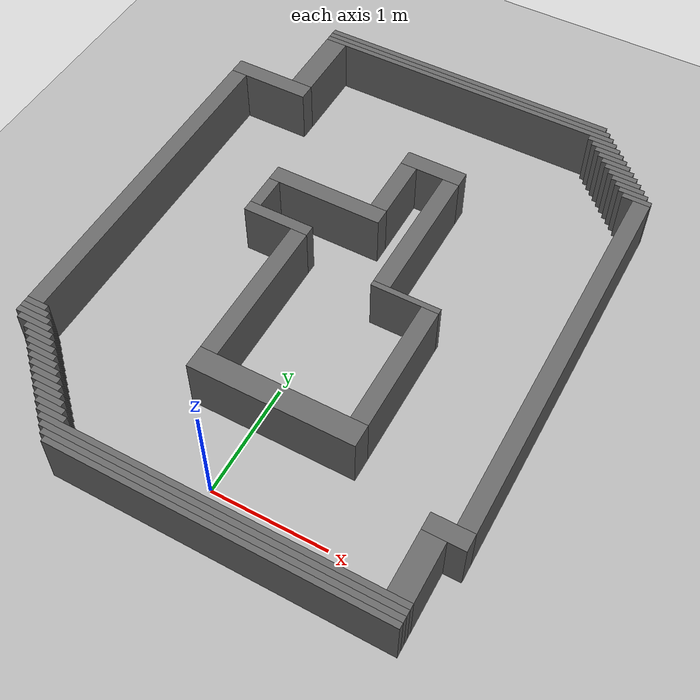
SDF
<?xml version="1.0" ?>
<sdf version="1.6">
  <world name="my_map_world">
    <plugin name="gazebo_ros_state" filename="libgazebo_ros_state.so"/>
    <physics type="ode">
      <real_time_update_rate>1000</real_time_update_rate>
      <max_step_size>0.001</max_step_size>
    </physics>
    <scene>
      <ambient>0.4 0.4 0.4 1</ambient>
      <background>0.7 0.7 0.7 1</background>
      <shadows>true</shadows>
    </scene>
    <light name="sun" type="directional">
      <pose>0 0 10 0 0 0</pose>
      <diffuse>0.8 0.8 0.8 1</diffuse>
      <direction>0.1 0.1 -1</direction>
      <cast_shadows>true</cast_shadows>
    </light>
    <model name="ground_plane">
      <static>true</static>
      <link name="link">
        <collision name="collision">
          <geometry>
            <plane>
              <normal>0 0 1</normal>
              <size>20 20</size>
            </plane>
          </geometry>
          <surface>
            <friction>
              <ode>
                <mu>10.0</mu>
                <mu2>10.0</mu2>
                <fdir1>1 0 0</fdir1>
              </ode>
            </friction>
            <contact>
              <ode>
                <kp>1000000.0</kp>
                <kd>10.0</kd>
                <max_vel>0.1</max_vel>
                <min_depth>0.001</min_depth>
              </ode>
            </contact>
          </surface>
        </collision>
        <visual name="visual">
          <geometry><plane><normal>0 0 1</normal><size>20 20</size></plane></geometry>
          <material><ambient>0.5 0.5 0.5 1</ambient><diffuse>0.7 0.7 0.7 1</diffuse></material>
        </visual>
      </link>
    </model>
    <model name="wall_0">
      <static>true</static>
      <pose>-0.080656 4.467913 0.250000 0 0 0</pose>
      <link name="link">
        <collision name="collision">
          <geometry><box><size>2.750000 0.050000 0.500000</size></box></geometry>
        </collision>
        <visual name="visual">
          <geometry><box><size>2.750000 0.050000 0.500000</size></box></geometry>
          <material><ambient>0.2 0.2 0.2 1</ambient><diffuse>0.4 0.4 0.4 1</diffuse></material>
        </visual>
      </link>
    </model>
    <model name="wall_1">
      <static>true</static>
      <pose>-0.055656 4.417913 0.250000 0 0 0</pose>
      <link name="link">
        <collision name="collision">
          <geometry><box><size>2.800000 0.050000 0.500000</size></box></geometry>
        </collision>
        <visual name="visual">
          <geometry><box><size>2.800000 0.050000 0.500000</size></box></geometry>
          <material><ambient>0.2 0.2 0.2 1</ambient><diffuse>0.4 0.4 0.4 1</diffuse></material>
        </visual>
      </link>
    </model>
    <model name="wall_2">
      <static>true</static>
      <pose>-0.030656 4.367913 0.250000 0 0 0</pose>
      <link name="link">
        <collision name="collision">
          <geometry><box><size>2.850000 0.050000 0.500000</size></box></geometry>
        </collision>
        <visual name="visual">
          <geometry><box><size>2.850000 0.050000 0.500000</size></box></geometry>
          <material><ambient>0.2 0.2 0.2 1</ambient><diffuse>0.4 0.4 0.4 1</diffuse></material>
        </visual>
      </link>
    </model>
    <model name="wall_3">
      <static>true</static>
      <pose>1.319344 4.317913 0.250000 0 0 0</pose>
      <link name="link">
        <collision name="collision">
          <geometry><box><size>0.250000 0.050000 0.500000</size></box></geometry>
        </collision>
        <visual name="visual">
          <geometry><box><size>0.250000 0.050000 0.500000</size></box></geometry>
          <material><ambient>0.2 0.2 0.2 1</ambient><diffuse>0.4 0.4 0.4 1</diffuse></material>
        </visual>
      </link>
    </model>
    <model name="wall_4">
      <static>true</static>
      <pose>1.369344 4.267913 0.250000 0 0 0</pose>
      <link name="link">
        <collision name="collision">
          <geometry><box><size>0.250000 0.050000 0.500000</size></box></geometry>
        </collision>
        <visual name="visual">
          <geometry><box><size>0.250000 0.050000 0.500000</size></box></geometry>
          <material><ambient>0.2 0.2 0.2 1</ambient><diffuse>0.4 0.4 0.4 1</diffuse></material>
        </visual>
      </link>
    </model>
    <model name="wall_5">
      <static>true</static>
      <pose>1.419344 4.217913 0.250000 0 0 0</pose>
      <link name="link">
        <collision name="collision">
          <geometry><box><size>0.250000 0.050000 0.500000</size></box></geometry>
        </collision>
        <visual name="visual">
          <geometry><box><size>0.250000 0.050000 0.500000</size></box></geometry>
          <material><ambient>0.2 0.2 0.2 1</ambient><diffuse>0.4 0.4 0.4 1</diffuse></material>
        </visual>
      </link>
    </model>
    <model name="wall_6">
      <static>true</static>
      <pose>1.469344 4.167913 0.250000 0 0 0</pose>
      <link name="link">
        <collision name="collision">
          <geometry><box><size>0.250000 0.050000 0.500000</size></box></geometry>
        </collision>
        <visual name="visual">
          <geometry><box><size>0.250000 0.050000 0.500000</size></box></geometry>
          <material><ambient>0.2 0.2 0.2 1</ambient><diffuse>0.4 0.4 0.4 1</diffuse></material>
        </visual>
      </link>
    </model>
    <model name="wall_7">
      <static>true</static>
      <pose>1.519344 4.117913 0.250000 0 0 0</pose>
      <link name="link">
        <collision name="collision">
          <geometry><box><size>0.250000 0.050000 0.500000</size></box></geometry>
        </collision>
        <visual name="visual">
          <geometry><box><size>0.250000 0.050000 0.500000</size></box></geometry>
          <material><ambient>0.2 0.2 0.2 1</ambient><diffuse>0.4 0.4 0.4 1</diffuse></material>
        </visual>
      </link>
    </model>
    <model name="wall_8">
      <static>true</static>
      <pose>1.569344 4.067913 0.250000 0 0 0</pose>
      <link name="link">
        <collision name="collision">
          <geometry><box><size>0.250000 0.050000 0.500000</size></box></geometry>
        </collision>
        <visual name="visual">
          <geometry><box><size>0.250000 0.050000 0.500000</size></box></geometry>
          <material><ambient>0.2 0.2 0.2 1</ambient><diffuse>0.4 0.4 0.4 1</diffuse></material>
        </visual>
      </link>
    </model>
    <model name="wall_9">
      <static>true</static>
      <pose>1.619344 4.017913 0.250000 0 0 0</pose>
      <link name="link">
        <collision name="collision">
          <geometry><box><size>0.250000 0.050000 0.500000</size></box></geometry>
        </collision>
        <visual name="visual">
          <geometry><box><size>0.250000 0.050000 0.500000</size></box></geometry>
          <material><ambient>0.2 0.2 0.2 1</ambient><diffuse>0.4 0.4 0.4 1</diffuse></material>
        </visual>
      </link>
    </model>
    <model name="wall_10">
      <static>true</static>
      <pose>1.669344 3.967913 0.250000 0 0 0</pose>
      <link name="link">
        <collision name="collision">
          <geometry><box><size>0.250000 0.050000 0.500000</size></box></geometry>
        </collision>
        <visual name="visual">
          <geometry><box><size>0.250000 0.050000 0.500000</size></box></geometry>
          <material><ambient>0.2 0.2 0.2 1</ambient><diffuse>0.4 0.4 0.4 1</diffuse></material>
        </visual>
      </link>
    </model>
    <model name="wall_11">
      <static>true</static>
      <pose>1.719344 3.917913 0.250000 0 0 0</pose>
      <link name="link">
        <collision name="collision">
          <geometry><box><size>0.250000 0.050000 0.500000</size></box></geometry>
        </collision>
        <visual name="visual">
          <geometry><box><size>0.250000 0.050000 0.500000</size></box></geometry>
          <material><ambient>0.2 0.2 0.2 1</ambient><diffuse>0.4 0.4 0.4 1</diffuse></material>
        </visual>
      </link>
    </model>
    <model name="wall_12">
      <static>true</static>
      <pose>1.769344 3.867913 0.250000 0 0 0</pose>
      <link name="link">
        <collision name="collision">
          <geometry><box><size>0.250000 0.050000 0.500000</size></box></geometry>
        </collision>
        <visual name="visual">
          <geometry><box><size>0.250000 0.050000 0.500000</size></box></geometry>
          <material><ambient>0.2 0.2 0.2 1</ambient><diffuse>0.4 0.4 0.4 1</diffuse></material>
        </visual>
      </link>
    </model>
    <model name="wall_13">
      <static>true</static>
      <pose>1.819344 3.817913 0.250000 0 0 0</pose>
      <link name="link">
        <collision name="collision">
          <geometry><box><size>0.250000 0.050000 0.500000</size></box></geometry>
        </collision>
        <visual name="visual">
          <geometry><box><size>0.250000 0.050000 0.500000</size></box></geometry>
          <material><ambient>0.2 0.2 0.2 1</ambient><diffuse>0.4 0.4 0.4 1</diffuse></material>
        </visual>
      </link>
    </model>
    <model name="wall_14">
      <static>true</static>
      <pose>-1.355656 4.017913 0.250000 0 0 0</pose>
      <link name="link">
        <collision name="collision">
          <geometry><box><size>0.200000 0.650000 0.500000</size></box></geometry>
        </collision>
        <visual name="visual">
          <geometry><box><size>0.200000 0.650000 0.500000</size></box></geometry>
          <material><ambient>0.2 0.2 0.2 1</ambient><diffuse>0.4 0.4 0.4 1</diffuse></material>
        </visual>
      </link>
    </model>
    <model name="wall_15">
      <static>true</static>
      <pose>-1.630656 3.617913 0.250000 0 0 0</pose>
      <link name="link">
        <collision name="collision">
          <geometry><box><size>0.750000 0.150000 0.500000</size></box></geometry>
        </collision>
        <visual name="visual">
          <geometry><box><size>0.750000 0.150000 0.500000</size></box></geometry>
          <material><ambient>0.2 0.2 0.2 1</ambient><diffuse>0.4 0.4 0.4 1</diffuse></material>
        </visual>
      </link>
    </model>
    <model name="wall_16">
      <static>true</static>
      <pose>0.169344 3.317913 0.250000 0 0 0</pose>
      <link name="link">
        <collision name="collision">
          <geometry><box><size>0.550000 0.150000 0.500000</size></box></geometry>
        </collision>
        <visual name="visual">
          <geometry><box><size>0.550000 0.150000 0.500000</size></box></geometry>
          <material><ambient>0.2 0.2 0.2 1</ambient><diffuse>0.4 0.4 0.4 1</diffuse></material>
        </visual>
      </link>
    </model>
    <model name="wall_17">
      <static>true</static>
      <pose>-0.030656 2.967913 0.250000 0 0 0</pose>
      <link name="link">
        <collision name="collision">
          <geometry><box><size>0.150000 0.550000 0.500000</size></box></geometry>
        </collision>
        <visual name="visual">
          <geometry><box><size>0.150000 0.550000 0.500000</size></box></geometry>
          <material><ambient>0.2 0.2 0.2 1</ambient><diffuse>0.4 0.4 0.4 1</diffuse></material>
        </visual>
      </link>
    </model>
    <model name="wall_18">
      <static>true</static>
      <pose>-0.480656 2.617913 0.250000 0 0 0</pose>
      <link name="link">
        <collision name="collision">
          <geometry><box><size>1.050000 0.150000 0.500000</size></box></geometry>
        </collision>
        <visual name="visual">
          <geometry><box><size>1.050000 0.150000 0.500000</size></box></geometry>
          <material><ambient>0.2 0.2 0.2 1</ambient><diffuse>0.4 0.4 0.4 1</diffuse></material>
        </visual>
      </link>
    </model>
    <model name="wall_19">
      <static>true</static>
      <pose>-0.955656 2.392913 0.250000 0 0 0</pose>
      <link name="link">
        <collision name="collision">
          <geometry><box><size>0.100000 0.300000 0.500000</size></box></geometry>
        </collision>
        <visual name="visual">
          <geometry><box><size>0.100000 0.300000 0.500000</size></box></geometry>
          <material><ambient>0.2 0.2 0.2 1</ambient><diffuse>0.4 0.4 0.4 1</diffuse></material>
        </visual>
      </link>
    </model>
    <model name="wall_20">
      <static>true</static>
      <pose>-0.705656 2.192913 0.250000 0 0 0</pose>
      <link name="link">
        <collision name="collision">
          <geometry><box><size>0.600000 0.100000 0.500000</size></box></geometry>
        </collision>
        <visual name="visual">
          <geometry><box><size>0.600000 0.100000 0.500000</size></box></geometry>
          <material><ambient>0.2 0.2 0.2 1</ambient><diffuse>0.4 0.4 0.4 1</diffuse></material>
        </visual>
      </link>
    </model>
    <model name="wall_21">
      <static>true</static>
      <pose>0.369344 2.617913 0.250000 0 0 0</pose>
      <link name="link">
        <collision name="collision">
          <geometry><box><size>0.150000 1.250000 0.500000</size></box></geometry>
        </collision>
        <visual name="visual">
          <geometry><box><size>0.150000 1.250000 0.500000</size></box></geometry>
          <material><ambient>0.2 0.2 0.2 1</ambient><diffuse>0.4 0.4 0.4 1</diffuse></material>
        </visual>
      </link>
    </model>
    <model name="wall_22">
      <static>true</static>
      <pose>0.594344 1.967913 0.250000 0 0 0</pose>
      <link name="link">
        <collision name="collision">
          <geometry><box><size>0.600000 0.050000 0.500000</size></box></geometry>
        </collision>
        <visual name="visual">
          <geometry><box><size>0.600000 0.050000 0.500000</size></box></geometry>
          <material><ambient>0.2 0.2 0.2 1</ambient><diffuse>0.4 0.4 0.4 1</diffuse></material>
        </visual>
      </link>
    </model>
    <model name="wall_23">
      <static>true</static>
      <pose>-0.480656 1.467913 0.250000 0 0 0</pose>
      <link name="link">
        <collision name="collision">
          <geometry><box><size>0.150000 1.350000 0.500000</size></box></geometry>
        </collision>
        <visual name="visual">
          <geometry><box><size>0.150000 1.350000 0.500000</size></box></geometry>
          <material><ambient>0.2 0.2 0.2 1</ambient><diffuse>0.4 0.4 0.4 1</diffuse></material>
        </visual>
      </link>
    </model>
    <model name="wall_24">
      <static>true</static>
      <pose>0.819344 1.367913 0.250000 0 0 0</pose>
      <link name="link">
        <collision name="collision">
          <geometry><box><size>0.150000 1.150000 0.500000</size></box></geometry>
        </collision>
        <visual name="visual">
          <geometry><box><size>0.150000 1.150000 0.500000</size></box></geometry>
          <material><ambient>0.2 0.2 0.2 1</ambient><diffuse>0.4 0.4 0.4 1</diffuse></material>
        </visual>
      </link>
    </model>
    <model name="wall_25">
      <static>true</static>
      <pose>0.169344 0.692913 0.250000 0 0 0</pose>
      <link name="link">
        <collision name="collision">
          <geometry><box><size>1.450000 0.200000 0.500000</size></box></geometry>
        </collision>
        <visual name="visual">
          <geometry><box><size>1.450000 0.200000 0.500000</size></box></geometry>
          <material><ambient>0.2 0.2 0.2 1</ambient><diffuse>0.4 0.4 0.4 1</diffuse></material>
        </visual>
      </link>
    </model>
    <model name="wall_26">
      <static>true</static>
      <pose>-1.930656 2.042913 0.250000 0 0 0</pose>
      <link name="link">
        <collision name="collision">
          <geometry><box><size>0.150000 3.000000 0.500000</size></box></geometry>
        </collision>
        <visual name="visual">
          <geometry><box><size>0.150000 3.000000 0.500000</size></box></geometry>
          <material><ambient>0.2 0.2 0.2 1</ambient><diffuse>0.4 0.4 0.4 1</diffuse></material>
        </visual>
      </link>
    </model>
    <model name="wall_27">
      <static>true</static>
      <pose>-1.905656 0.517913 0.250000 0 0 0</pose>
      <link name="link">
        <collision name="collision">
          <geometry><box><size>0.200000 0.050000 0.500000</size></box></geometry>
        </collision>
        <visual name="visual">
          <geometry><box><size>0.200000 0.050000 0.500000</size></box></geometry>
          <material><ambient>0.2 0.2 0.2 1</ambient><diffuse>0.4 0.4 0.4 1</diffuse></material>
        </visual>
      </link>
    </model>
    <model name="wall_28">
      <static>true</static>
      <pose>-1.880656 0.467913 0.250000 0 0 0</pose>
      <link name="link">
        <collision name="collision">
          <geometry><box><size>0.250000 0.050000 0.500000</size></box></geometry>
        </collision>
        <visual name="visual">
          <geometry><box><size>0.250000 0.050000 0.500000</size></box></geometry>
          <material><ambient>0.2 0.2 0.2 1</ambient><diffuse>0.4 0.4 0.4 1</diffuse></material>
        </visual>
      </link>
    </model>
    <model name="wall_29">
      <static>true</static>
      <pose>-1.855656 0.417913 0.250000 0 0 0</pose>
      <link name="link">
        <collision name="collision">
          <geometry><box><size>0.300000 0.050000 0.500000</size></box></geometry>
        </collision>
        <visual name="visual">
          <geometry><box><size>0.300000 0.050000 0.500000</size></box></geometry>
          <material><ambient>0.2 0.2 0.2 1</ambient><diffuse>0.4 0.4 0.4 1</diffuse></material>
        </visual>
      </link>
    </model>
    <model name="wall_30">
      <static>true</static>
      <pose>1.869344 2.092913 0.250000 0 0 0</pose>
      <link name="link">
        <collision name="collision">
          <geometry><box><size>0.150000 3.400000 0.500000</size></box></geometry>
        </collision>
        <visual name="visual">
          <geometry><box><size>0.150000 3.400000 0.500000</size></box></geometry>
          <material><ambient>0.2 0.2 0.2 1</ambient><diffuse>0.4 0.4 0.4 1</diffuse></material>
        </visual>
      </link>
    </model>
    <model name="wall_31">
      <static>true</static>
      <pose>-1.805656 0.367913 0.250000 0 0 0</pose>
      <link name="link">
        <collision name="collision">
          <geometry><box><size>0.300000 0.050000 0.500000</size></box></geometry>
        </collision>
        <visual name="visual">
          <geometry><box><size>0.300000 0.050000 0.500000</size></box></geometry>
          <material><ambient>0.2 0.2 0.2 1</ambient><diffuse>0.4 0.4 0.4 1</diffuse></material>
        </visual>
      </link>
    </model>
    <model name="wall_32">
      <static>true</static>
      <pose>-1.730656 0.317913 0.250000 0 0 0</pose>
      <link name="link">
        <collision name="collision">
          <geometry><box><size>0.250000 0.050000 0.500000</size></box></geometry>
        </collision>
        <visual name="visual">
          <geometry><box><size>0.250000 0.050000 0.500000</size></box></geometry>
          <material><ambient>0.2 0.2 0.2 1</ambient><diffuse>0.4 0.4 0.4 1</diffuse></material>
        </visual>
      </link>
    </model>
    <model name="wall_33">
      <static>true</static>
      <pose>-1.680656 0.267913 0.250000 0 0 0</pose>
      <link name="link">
        <collision name="collision">
          <geometry><box><size>0.250000 0.050000 0.500000</size></box></geometry>
        </collision>
        <visual name="visual">
          <geometry><box><size>0.250000 0.050000 0.500000</size></box></geometry>
          <material><ambient>0.2 0.2 0.2 1</ambient><diffuse>0.4 0.4 0.4 1</diffuse></material>
        </visual>
      </link>
    </model>
    <model name="wall_34">
      <static>true</static>
      <pose>1.769344 0.317913 0.250000 0 0 0</pose>
      <link name="link">
        <collision name="collision">
          <geometry><box><size>0.350000 0.150000 0.500000</size></box></geometry>
        </collision>
        <visual name="visual">
          <geometry><box><size>0.350000 0.150000 0.500000</size></box></geometry>
          <material><ambient>0.2 0.2 0.2 1</ambient><diffuse>0.4 0.4 0.4 1</diffuse></material>
        </visual>
      </link>
    </model>
    <model name="wall_35">
      <static>true</static>
      <pose>-1.630656 0.217913 0.250000 0 0 0</pose>
      <link name="link">
        <collision name="collision">
          <geometry><box><size>0.250000 0.050000 0.500000</size></box></geometry>
        </collision>
        <visual name="visual">
          <geometry><box><size>0.250000 0.050000 0.500000</size></box></geometry>
          <material><ambient>0.2 0.2 0.2 1</ambient><diffuse>0.4 0.4 0.4 1</diffuse></material>
        </visual>
      </link>
    </model>
    <model name="wall_36">
      <static>true</static>
      <pose>-1.580656 0.167913 0.250000 0 0 0</pose>
      <link name="link">
        <collision name="collision">
          <geometry><box><size>0.250000 0.050000 0.500000</size></box></geometry>
        </collision>
        <visual name="visual">
          <geometry><box><size>0.250000 0.050000 0.500000</size></box></geometry>
          <material><ambient>0.2 0.2 0.2 1</ambient><diffuse>0.4 0.4 0.4 1</diffuse></material>
        </visual>
      </link>
    </model>
    <model name="wall_37">
      <static>true</static>
      <pose>-1.530656 0.117913 0.250000 0 0 0</pose>
      <link name="link">
        <collision name="collision">
          <geometry><box><size>0.250000 0.050000 0.500000</size></box></geometry>
        </collision>
        <visual name="visual">
          <geometry><box><size>0.250000 0.050000 0.500000</size></box></geometry>
          <material><ambient>0.2 0.2 0.2 1</ambient><diffuse>0.4 0.4 0.4 1</diffuse></material>
        </visual>
      </link>
    </model>
    <model name="wall_38">
      <static>true</static>
      <pose>-1.480656 0.067913 0.250000 0 0 0</pose>
      <link name="link">
        <collision name="collision">
          <geometry><box><size>0.250000 0.050000 0.500000</size></box></geometry>
        </collision>
        <visual name="visual">
          <geometry><box><size>0.250000 0.050000 0.500000</size></box></geometry>
          <material><ambient>0.2 0.2 0.2 1</ambient><diffuse>0.4 0.4 0.4 1</diffuse></material>
        </visual>
      </link>
    </model>
    <model name="wall_39">
      <static>true</static>
      <pose>-1.430656 0.017913 0.250000 0 0 0</pose>
      <link name="link">
        <collision name="collision">
          <geometry><box><size>0.250000 0.050000 0.500000</size></box></geometry>
        </collision>
        <visual name="visual">
          <geometry><box><size>0.250000 0.050000 0.500000</size></box></geometry>
          <material><ambient>0.2 0.2 0.2 1</ambient><diffuse>0.4 0.4 0.4 1</diffuse></material>
        </visual>
      </link>
    </model>
    <model name="wall_40">
      <static>true</static>
      <pose>-1.380656 -0.032087 0.250000 0 0 0</pose>
      <link name="link">
        <collision name="collision">
          <geometry><box><size>0.250000 0.050000 0.500000</size></box></geometry>
        </collision>
        <visual name="visual">
          <geometry><box><size>0.250000 0.050000 0.500000</size></box></geometry>
          <material><ambient>0.2 0.2 0.2 1</ambient><diffuse>0.4 0.4 0.4 1</diffuse></material>
        </visual>
      </link>
    </model>
    <model name="wall_41">
      <static>true</static>
      <pose>-1.330656 -0.082087 0.250000 0 0 0</pose>
      <link name="link">
        <collision name="collision">
          <geometry><box><size>0.250000 0.050000 0.500000</size></box></geometry>
        </collision>
        <visual name="visual">
          <geometry><box><size>0.250000 0.050000 0.500000</size></box></geometry>
          <material><ambient>0.2 0.2 0.2 1</ambient><diffuse>0.4 0.4 0.4 1</diffuse></material>
        </visual>
      </link>
    </model>
    <model name="wall_42">
      <static>true</static>
      <pose>-1.280656 -0.132087 0.250000 0 0 0</pose>
      <link name="link">
        <collision name="collision">
          <geometry><box><size>0.250000 0.050000 0.500000</size></box></geometry>
        </collision>
        <visual name="visual">
          <geometry><box><size>0.250000 0.050000 0.500000</size></box></geometry>
          <material><ambient>0.2 0.2 0.2 1</ambient><diffuse>0.4 0.4 0.4 1</diffuse></material>
        </visual>
      </link>
    </model>
    <model name="wall_43">
      <static>true</static>
      <pose>-1.230656 -0.182087 0.250000 0 0 0</pose>
      <link name="link">
        <collision name="collision">
          <geometry><box><size>0.250000 0.050000 0.500000</size></box></geometry>
        </collision>
        <visual name="visual">
          <geometry><box><size>0.250000 0.050000 0.500000</size></box></geometry>
          <material><ambient>0.2 0.2 0.2 1</ambient><diffuse>0.4 0.4 0.4 1</diffuse></material>
        </visual>
      </link>
    </model>
    <model name="wall_44">
      <static>true</static>
      <pose>-1.180656 -0.232087 0.250000 0 0 0</pose>
      <link name="link">
        <collision name="collision">
          <geometry><box><size>0.250000 0.050000 0.500000</size></box></geometry>
        </collision>
        <visual name="visual">
          <geometry><box><size>0.250000 0.050000 0.500000</size></box></geometry>
          <material><ambient>0.2 0.2 0.2 1</ambient><diffuse>0.4 0.4 0.4 1</diffuse></material>
        </visual>
      </link>
    </model>
    <model name="wall_45">
      <static>true</static>
      <pose>1.694344 -0.007087 0.250000 0 0 0</pose>
      <link name="link">
        <collision name="collision">
          <geometry><box><size>0.200000 0.500000 0.500000</size></box></geometry>
        </collision>
        <visual name="visual">
          <geometry><box><size>0.200000 0.500000 0.500000</size></box></geometry>
          <material><ambient>0.2 0.2 0.2 1</ambient><diffuse>0.4 0.4 0.4 1</diffuse></material>
        </visual>
      </link>
    </model>
    <model name="wall_46">
      <static>true</static>
      <pose>0.269344 -0.282087 0.250000 0 0 0</pose>
      <link name="link">
        <collision name="collision">
          <geometry><box><size>3.050000 0.050000 0.500000</size></box></geometry>
        </collision>
        <visual name="visual">
          <geometry><box><size>3.050000 0.050000 0.500000</size></box></geometry>
          <material><ambient>0.2 0.2 0.2 1</ambient><diffuse>0.4 0.4 0.4 1</diffuse></material>
        </visual>
      </link>
    </model>
    <model name="wall_47">
      <static>true</static>
      <pose>0.294344 -0.332087 0.250000 0 0 0</pose>
      <link name="link">
        <collision name="collision">
          <geometry><box><size>3.000000 0.050000 0.500000</size></box></geometry>
        </collision>
        <visual name="visual">
          <geometry><box><size>3.000000 0.050000 0.500000</size></box></geometry>
          <material><ambient>0.2 0.2 0.2 1</ambient><diffuse>0.4 0.4 0.4 1</diffuse></material>
        </visual>
      </link>
    </model>
    <model name="wall_48">
      <static>true</static>
      <pose>0.319344 -0.382087 0.250000 0 0 0</pose>
      <link name="link">
        <collision name="collision">
          <geometry><box><size>2.950000 0.050000 0.500000</size></box></geometry>
        </collision>
        <visual name="visual">
          <geometry><box><size>2.950000 0.050000 0.500000</size></box></geometry>
          <material><ambient>0.2 0.2 0.2 1</ambient><diffuse>0.4 0.4 0.4 1</diffuse></material>
        </visual>
      </link>
    </model>
    <model name="wall_49">
      <static>true</static>
      <pose>0.344344 -0.432087 0.250000 0 0 0</pose>
      <link name="link">
        <collision name="collision">
          <geometry><box><size>2.900000 0.050000 0.500000</size></box></geometry>
        </collision>
        <visual name="visual">
          <geometry><box><size>2.900000 0.050000 0.500000</size></box></geometry>
          <material><ambient>0.2 0.2 0.2 1</ambient><diffuse>0.4 0.4 0.4 1</diffuse></material>
        </visual>
      </link>
    </model>
  </world>
</sdf>
